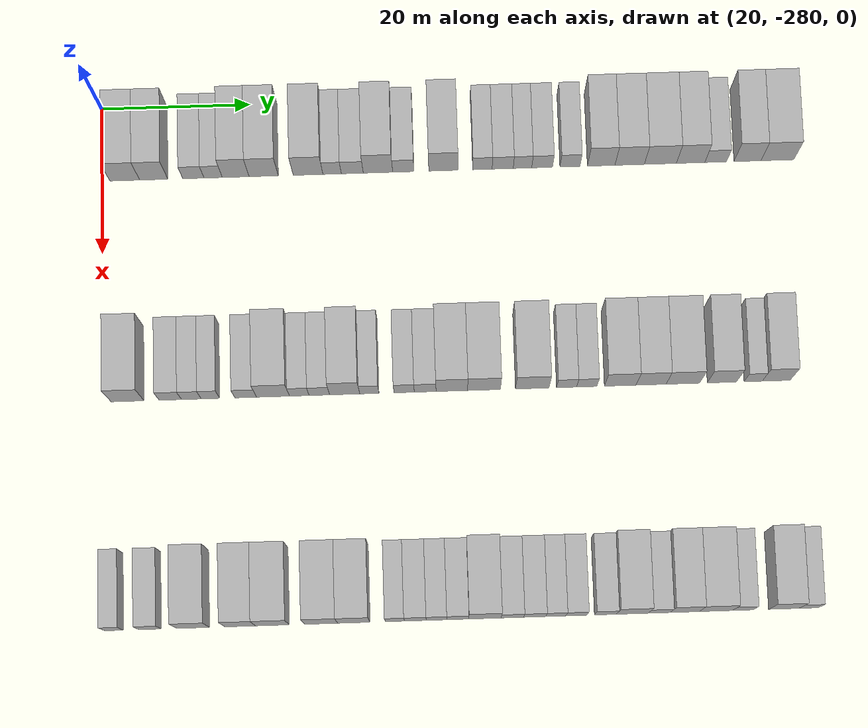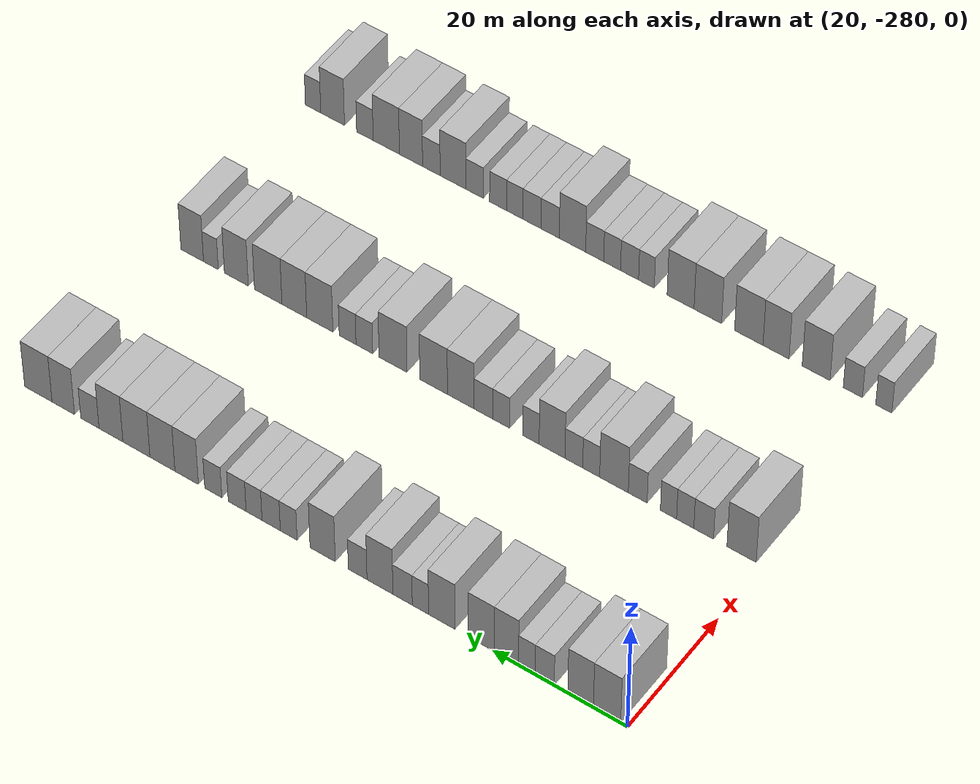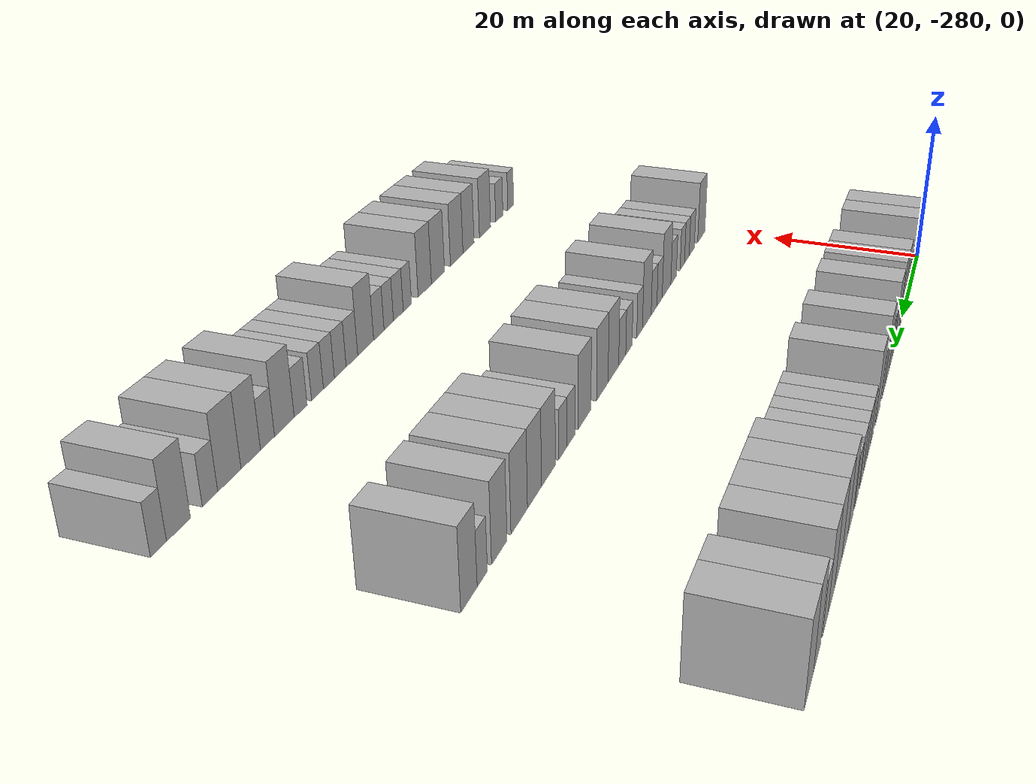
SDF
<sdf version="1.6">
 <world name="default">
  <model name="building_1">
   <static>1</static>
   <pose>25.0000 -276.9936 0 0.000000 0.000000 0.000000</pose>
   <link name="link">
    <pose>0 0 4.50 0 0 0</pose>
    <collision name="collision"><geometry><box><size>10.0000 4.0128 9.0000</size></box></geometry></collision>
    <visual name="visual">
     <cast_shadows>0</cast_shadows>
     <geometry><box><size>10.0000 4.0128 9.0000</size></box></geometry>
     <material>
      <script>
       <uri>model://HANNAS_wall/materials/scripts</uri>
       <uri>model://HANNAS_wall/materials/textures</uri>
       <name>vrc/HANNAS_wall</name>
      </script>
     </material>
    </visual>
   </link>
  </model>
  <model name="building_2">
   <static>1</static>
   <pose>25.0000 -273.1018 0 0.000000 0.000000 0.000000</pose>
   <link name="link">
    <pose>0 0 4.50 0 0 0</pose>
    <collision name="collision"><geometry><box><size>10.0000 3.7709 9.0000</size></box></geometry></collision>
    <visual name="visual">
     <cast_shadows>0</cast_shadows>
     <geometry><box><size>10.0000 3.7709 9.0000</size></box></geometry>
     <material>
      <script>
       <uri>model://HANNAS_wall/materials/scripts</uri>
       <uri>model://HANNAS_wall/materials/textures</uri>
       <name>vrc/HANNAS_wall</name>
      </script>
     </material>
    </visual>
   </link>
  </model>
  <model name="building_3">
   <static>1</static>
   <pose>25.0000 -267.7888 0 0.000000 0.000000 0.000000</pose>
   <link name="link">
    <pose>0 0 3.00 0 0 0</pose>
    <collision name="collision"><geometry><box><size>10.0000 2.8552 6.0000</size></box></geometry></collision>
    <visual name="visual">
     <cast_shadows>0</cast_shadows>
     <geometry><box><size>10.0000 2.8552 6.0000</size></box></geometry>
     <material>
      <script>
       <uri>model://HANNAS_wall/materials/scripts</uri>
       <uri>model://HANNAS_wall/materials/textures</uri>
       <name>vrc/HANNAS_wall</name>
      </script>
     </material>
    </visual>
   </link>
  </model>
  <model name="building_4">
   <static>1</static>
   <pose>25.0000 -265.1364 0 0.000000 0.000000 0.000000</pose>
   <link name="link">
    <pose>0 0 3.00 0 0 0</pose>
    <collision name="collision"><geometry><box><size>10.0000 2.4496 6.0000</size></box></geometry></collision>
    <visual name="visual">
     <cast_shadows>0</cast_shadows>
     <geometry><box><size>10.0000 2.4496 6.0000</size></box></geometry>
     <material>
      <script>
       <uri>model://HANNAS_wall/materials/scripts</uri>
       <uri>model://HANNAS_wall/materials/textures</uri>
       <name>vrc/HANNAS_wall</name>
      </script>
     </material>
    </visual>
   </link>
  </model>
  <model name="building_5">
   <static>1</static>
   <pose>25.0000 -262.1092 0 0.000000 0.000000 0.000000</pose>
   <link name="link">
    <pose>0 0 4.50 0 0 0</pose>
    <collision name="collision"><geometry><box><size>10.0000 3.6049 9.0000</size></box></geometry></collision>
    <visual name="visual">
     <cast_shadows>0</cast_shadows>
     <geometry><box><size>10.0000 3.6049 9.0000</size></box></geometry>
     <material>
      <script>
       <uri>model://HANNAS_wall/materials/scripts</uri>
       <uri>model://HANNAS_wall/materials/textures</uri>
       <name>vrc/HANNAS_wall</name>
      </script>
     </material>
    </visual>
   </link>
  </model>
  <model name="building_6">
   <static>1</static>
   <pose>25.0000 -258.3489 0 0.000000 0.000000 0.000000</pose>
   <link name="link">
    <pose>0 0 4.50 0 0 0</pose>
    <collision name="collision"><geometry><box><size>10.0000 3.9157 9.0000</size></box></geometry></collision>
    <visual name="visual">
     <cast_shadows>0</cast_shadows>
     <geometry><box><size>10.0000 3.9157 9.0000</size></box></geometry>
     <material>
      <script>
       <uri>model://HANNAS_wall/materials/scripts</uri>
       <uri>model://HANNAS_wall/materials/textures</uri>
       <name>vrc/HANNAS_wall</name>
      </script>
     </material>
    </visual>
   </link>
  </model>
  <model name="building_7">
   <static>1</static>
   <pose>25.0000 -252.3953 0 0.000000 0.000000 0.000000</pose>
   <link name="link">
    <pose>0 0 4.50 0 0 0</pose>
    <collision name="collision"><geometry><box><size>10.0000 3.9916 9.0000</size></box></geometry></collision>
    <visual name="visual">
     <cast_shadows>0</cast_shadows>
     <geometry><box><size>10.0000 3.9916 9.0000</size></box></geometry>
     <material>
      <script>
       <uri>model://HANNAS_wall/materials/scripts</uri>
       <uri>model://HANNAS_wall/materials/textures</uri>
       <name>vrc/HANNAS_wall</name>
      </script>
     </material>
    </visual>
   </link>
  </model>
  <model name="building_8">
   <static>1</static>
   <pose>25.0000 -249.1652 0 0.000000 0.000000 0.000000</pose>
   <link name="link">
    <pose>0 0 3.00 0 0 0</pose>
    <collision name="collision"><geometry><box><size>10.0000 2.4686 6.0000</size></box></geometry></collision>
    <visual name="visual">
     <cast_shadows>0</cast_shadows>
     <geometry><box><size>10.0000 2.4686 6.0000</size></box></geometry>
     <material>
      <script>
       <uri>model://HANNAS_wall/materials/scripts</uri>
       <uri>model://HANNAS_wall/materials/textures</uri>
       <name>vrc/HANNAS_wall</name>
      </script>
     </material>
    </visual>
   </link>
  </model>
  <model name="building_9">
   <static>1</static>
   <pose>25.0000 -246.4581 0 0.000000 0.000000 0.000000</pose>
   <link name="link">
    <pose>0 0 3.00 0 0 0</pose>
    <collision name="collision"><geometry><box><size>10.0000 2.9456 6.0000</size></box></geometry></collision>
    <visual name="visual">
     <cast_shadows>0</cast_shadows>
     <geometry><box><size>10.0000 2.9456 6.0000</size></box></geometry>
     <material>
      <script>
       <uri>model://HANNAS_wall/materials/scripts</uri>
       <uri>model://HANNAS_wall/materials/textures</uri>
       <name>vrc/HANNAS_wall</name>
      </script>
     </material>
    </visual>
   </link>
  </model>
  <model name="building_10">
   <static>1</static>
   <pose>25.0000 -243.0096 0 0.000000 0.000000 0.000000</pose>
   <link name="link">
    <pose>0 0 4.50 0 0 0</pose>
    <collision name="collision"><geometry><box><size>10.0000 3.9515 9.0000</size></box></geometry></collision>
    <visual name="visual">
     <cast_shadows>0</cast_shadows>
     <geometry><box><size>10.0000 3.9515 9.0000</size></box></geometry>
     <material>
      <script>
       <uri>model://HANNAS_wall/materials/scripts</uri>
       <uri>model://HANNAS_wall/materials/textures</uri>
       <name>vrc/HANNAS_wall</name>
      </script>
     </material>
    </visual>
   </link>
  </model>
  <model name="building_11">
   <static>1</static>
   <pose>25.0000 -239.6024 0 0.000000 0.000000 0.000000</pose>
   <link name="link">
    <pose>0 0 3.00 0 0 0</pose>
    <collision name="collision"><geometry><box><size>10.0000 2.8628 6.0000</size></box></geometry></collision>
    <visual name="visual">
     <cast_shadows>0</cast_shadows>
     <geometry><box><size>10.0000 2.8628 6.0000</size></box></geometry>
     <material>
      <script>
       <uri>model://HANNAS_wall/materials/scripts</uri>
       <uri>model://HANNAS_wall/materials/textures</uri>
       <name>vrc/HANNAS_wall</name>
      </script>
     </material>
    </visual>
   </link>
  </model>
  <model name="building_12">
   <static>1</static>
   <pose>25.0000 -234.2247 0 0.000000 0.000000 0.000000</pose>
   <link name="link">
    <pose>0 0 4.50 0 0 0</pose>
    <collision name="collision"><geometry><box><size>10.0000 3.8927 9.0000</size></box></geometry></collision>
    <visual name="visual">
     <cast_shadows>0</cast_shadows>
     <geometry><box><size>10.0000 3.8927 9.0000</size></box></geometry>
     <material>
      <script>
       <uri>model://HANNAS_wall/materials/scripts</uri>
       <uri>model://HANNAS_wall/materials/textures</uri>
       <name>vrc/HANNAS_wall</name>
      </script>
     </material>
    </visual>
   </link>
  </model>
  <model name="building_13">
   <static>1</static>
   <pose>25.0000 -228.9771 0 0.000000 0.000000 0.000000</pose>
   <link name="link">
    <pose>0 0 3.00 0 0 0</pose>
    <collision name="collision"><geometry><box><size>10.0000 2.6024 6.0000</size></box></geometry></collision>
    <visual name="visual">
     <cast_shadows>0</cast_shadows>
     <geometry><box><size>10.0000 2.6024 6.0000</size></box></geometry>
     <material>
      <script>
       <uri>model://HANNAS_wall/materials/scripts</uri>
       <uri>model://HANNAS_wall/materials/textures</uri>
       <name>vrc/HANNAS_wall</name>
      </script>
     </material>
    </visual>
   </link>
  </model>
  <model name="building_14">
   <static>1</static>
   <pose>25.0000 -226.2507 0 0.000000 0.000000 0.000000</pose>
   <link name="link">
    <pose>0 0 3.00 0 0 0</pose>
    <collision name="collision"><geometry><box><size>10.0000 2.8504 6.0000</size></box></geometry></collision>
    <visual name="visual">
     <cast_shadows>0</cast_shadows>
     <geometry><box><size>10.0000 2.8504 6.0000</size></box></geometry>
     <material>
      <script>
       <uri>model://HANNAS_wall/materials/scripts</uri>
       <uri>model://HANNAS_wall/materials/textures</uri>
       <name>vrc/HANNAS_wall</name>
      </script>
     </material>
    </visual>
   </link>
  </model>
  <model name="building_15">
   <static>1</static>
   <pose>25.0000 -223.5835 0 0.000000 0.000000 0.000000</pose>
   <link name="link">
    <pose>0 0 3.00 0 0 0</pose>
    <collision name="collision"><geometry><box><size>10.0000 2.4840 6.0000</size></box></geometry></collision>
    <visual name="visual">
     <cast_shadows>0</cast_shadows>
     <geometry><box><size>10.0000 2.4840 6.0000</size></box></geometry>
     <material>
      <script>
       <uri>model://HANNAS_wall/materials/scripts</uri>
       <uri>model://HANNAS_wall/materials/textures</uri>
       <name>vrc/HANNAS_wall</name>
      </script>
     </material>
    </visual>
   </link>
  </model>
  <model name="building_16">
   <static>1</static>
   <pose>25.0000 -220.9449 0 0.000000 0.000000 0.000000</pose>
   <link name="link">
    <pose>0 0 3.00 0 0 0</pose>
    <collision name="collision"><geometry><box><size>10.0000 2.7931 6.0000</size></box></geometry></collision>
    <visual name="visual">
     <cast_shadows>0</cast_shadows>
     <geometry><box><size>10.0000 2.7931 6.0000</size></box></geometry>
     <material>
      <script>
       <uri>model://HANNAS_wall/materials/scripts</uri>
       <uri>model://HANNAS_wall/materials/textures</uri>
       <name>vrc/HANNAS_wall</name>
      </script>
     </material>
    </visual>
   </link>
  </model>
  <model name="building_17">
   <static>1</static>
   <pose>25.0000 -217.2045 0 0.000000 0.000000 0.000000</pose>
   <link name="link">
    <pose>0 0 3.00 0 0 0</pose>
    <collision name="collision"><geometry><box><size>10.0000 2.6878 6.0000</size></box></geometry></collision>
    <visual name="visual">
     <cast_shadows>0</cast_shadows>
     <geometry><box><size>10.0000 2.6878 6.0000</size></box></geometry>
     <material>
      <script>
       <uri>model://HANNAS_wall/materials/scripts</uri>
       <uri>model://HANNAS_wall/materials/textures</uri>
       <name>vrc/HANNAS_wall</name>
      </script>
     </material>
    </visual>
   </link>
  </model>
  <model name="building_18">
   <static>1</static>
   <pose>25.0000 -213.0085 0 0.000000 0.000000 0.000000</pose>
   <link name="link">
    <pose>0 0 4.50 0 0 0</pose>
    <collision name="collision"><geometry><box><size>10.0000 3.7042 9.0000</size></box></geometry></collision>
    <visual name="visual">
     <cast_shadows>0</cast_shadows>
     <geometry><box><size>10.0000 3.7042 9.0000</size></box></geometry>
     <material>
      <script>
       <uri>model://HANNAS_wall/materials/scripts</uri>
       <uri>model://HANNAS_wall/materials/textures</uri>
       <name>vrc/HANNAS_wall</name>
      </script>
     </material>
    </visual>
   </link>
  </model>
  <model name="building_19">
   <static>1</static>
   <pose>25.0000 -209.1764 0 0.000000 0.000000 0.000000</pose>
   <link name="link">
    <pose>0 0 4.50 0 0 0</pose>
    <collision name="collision"><geometry><box><size>10.0000 3.9599 9.0000</size></box></geometry></collision>
    <visual name="visual">
     <cast_shadows>0</cast_shadows>
     <geometry><box><size>10.0000 3.9599 9.0000</size></box></geometry>
     <material>
      <script>
       <uri>model://HANNAS_wall/materials/scripts</uri>
       <uri>model://HANNAS_wall/materials/textures</uri>
       <name>vrc/HANNAS_wall</name>
      </script>
     </material>
    </visual>
   </link>
  </model>
  <model name="building_20">
   <static>1</static>
   <pose>25.0000 -205.0404 0 0.000000 0.000000 0.000000</pose>
   <link name="link">
    <pose>0 0 4.50 0 0 0</pose>
    <collision name="collision"><geometry><box><size>10.0000 4.3121 9.0000</size></box></geometry></collision>
    <visual name="visual">
     <cast_shadows>0</cast_shadows>
     <geometry><box><size>10.0000 4.3121 9.0000</size></box></geometry>
     <material>
      <script>
       <uri>model://HANNAS_wall/materials/scripts</uri>
       <uri>model://HANNAS_wall/materials/textures</uri>
       <name>vrc/HANNAS_wall</name>
      </script>
     </material>
    </visual>
   </link>
  </model>
  <model name="building_21">
   <static>1</static>
   <pose>25.0000 -200.9704 0 0.000000 0.000000 0.000000</pose>
   <link name="link">
    <pose>0 0 4.50 0 0 0</pose>
    <collision name="collision"><geometry><box><size>10.0000 3.8279 9.0000</size></box></geometry></collision>
    <visual name="visual">
     <cast_shadows>0</cast_shadows>
     <geometry><box><size>10.0000 3.8279 9.0000</size></box></geometry>
     <material>
      <script>
       <uri>model://HANNAS_wall/materials/scripts</uri>
       <uri>model://HANNAS_wall/materials/textures</uri>
       <name>vrc/HANNAS_wall</name>
      </script>
     </material>
    </visual>
   </link>
  </model>
  <model name="building_22">
   <static>1</static>
   <pose>25.0000 -197.5957 0 0.000000 0.000000 0.000000</pose>
   <link name="link">
    <pose>0 0 3.00 0 0 0</pose>
    <collision name="collision"><geometry><box><size>10.0000 2.9216 6.0000</size></box></geometry></collision>
    <visual name="visual">
     <cast_shadows>0</cast_shadows>
     <geometry><box><size>10.0000 2.9216 6.0000</size></box></geometry>
     <material>
      <script>
       <uri>model://HANNAS_wall/materials/scripts</uri>
       <uri>model://HANNAS_wall/materials/textures</uri>
       <name>vrc/HANNAS_wall</name>
      </script>
     </material>
    </visual>
   </link>
  </model>
  <model name="building_23">
   <static>1</static>
   <pose>25.0000 -193.3182 0 0.000000 0.000000 0.000000</pose>
   <link name="link">
    <pose>0 0 4.50 0 0 0</pose>
    <collision name="collision"><geometry><box><size>10.0000 3.6334 9.0000</size></box></geometry></collision>
    <visual name="visual">
     <cast_shadows>0</cast_shadows>
     <geometry><box><size>10.0000 3.6334 9.0000</size></box></geometry>
     <material>
      <script>
       <uri>model://HANNAS_wall/materials/scripts</uri>
       <uri>model://HANNAS_wall/materials/textures</uri>
       <name>vrc/HANNAS_wall</name>
      </script>
     </material>
    </visual>
   </link>
  </model>
  <model name="building_24">
   <static>1</static>
   <pose>25.0000 -189.2866 0 0.000000 0.000000 0.000000</pose>
   <link name="link">
    <pose>0 0 4.50 0 0 0</pose>
    <collision name="collision"><geometry><box><size>10.0000 4.4299 9.0000</size></box></geometry></collision>
    <visual name="visual">
     <cast_shadows>0</cast_shadows>
     <geometry><box><size>10.0000 4.4299 9.0000</size></box></geometry>
     <material>
      <script>
       <uri>model://HANNAS_wall/materials/scripts</uri>
       <uri>model://HANNAS_wall/materials/textures</uri>
       <name>vrc/HANNAS_wall</name>
      </script>
     </material>
    </visual>
   </link>
  </model>
  <model name="building_143">
   <static>1</static>
   <pose>55.0000 -276.8254 0 0.000000 0.000000 0.000000</pose>
   <link name="link">
    <pose>0 0 4.50 0 0 0</pose>
    <collision name="collision"><geometry><box><size>10.0000 4.3493 9.0000</size></box></geometry></collision>
    <visual name="visual">
     <cast_shadows>0</cast_shadows>
     <geometry><box><size>10.0000 4.3493 9.0000</size></box></geometry>
     <material>
      <script>
       <uri>model://HANNAS_wall/materials/scripts</uri>
       <uri>model://HANNAS_wall/materials/textures</uri>
       <name>vrc/HANNAS_wall</name>
      </script>
     </material>
    </visual>
   </link>
  </model>
  <model name="building_144">
   <static>1</static>
   <pose>55.0000 -271.1749 0 0.000000 0.000000 0.000000</pose>
   <link name="link">
    <pose>0 0 3.00 0 0 0</pose>
    <collision name="collision"><geometry><box><size>10.0000 2.9516 6.0000</size></box></geometry></collision>
    <visual name="visual">
     <cast_shadows>0</cast_shadows>
     <geometry><box><size>10.0000 2.9516 6.0000</size></box></geometry>
     <material>
      <script>
       <uri>model://HANNAS_wall/materials/scripts</uri>
       <uri>model://HANNAS_wall/materials/textures</uri>
       <name>vrc/HANNAS_wall</name>
      </script>
     </material>
    </visual>
   </link>
  </model>
  <model name="building_145">
   <static>1</static>
   <pose>55.0000 -268.4026 0 0.000000 0.000000 0.000000</pose>
   <link name="link">
    <pose>0 0 3.00 0 0 0</pose>
    <collision name="collision"><geometry><box><size>10.0000 2.5930 6.0000</size></box></geometry></collision>
    <visual name="visual">
     <cast_shadows>0</cast_shadows>
     <geometry><box><size>10.0000 2.5930 6.0000</size></box></geometry>
     <material>
      <script>
       <uri>model://HANNAS_wall/materials/scripts</uri>
       <uri>model://HANNAS_wall/materials/textures</uri>
       <name>vrc/HANNAS_wall</name>
      </script>
     </material>
    </visual>
   </link>
  </model>
  <model name="building_146">
   <static>1</static>
   <pose>55.0000 -265.8883 0 0.000000 0.000000 0.000000</pose>
   <link name="link">
    <pose>0 0 3.00 0 0 0</pose>
    <collision name="collision"><geometry><box><size>10.0000 2.4357 6.0000</size></box></geometry></collision>
    <visual name="visual">
     <cast_shadows>0</cast_shadows>
     <geometry><box><size>10.0000 2.4357 6.0000</size></box></geometry>
     <material>
      <script>
       <uri>model://HANNAS_wall/materials/scripts</uri>
       <uri>model://HANNAS_wall/materials/textures</uri>
       <name>vrc/HANNAS_wall</name>
      </script>
     </material>
    </visual>
   </link>
  </model>
  <model name="building_147">
   <static>1</static>
   <pose>55.0000 -261.2442 0 0.000000 0.000000 0.000000</pose>
   <link name="link">
    <pose>0 0 3.00 0 0 0</pose>
    <collision name="collision"><geometry><box><size>10.0000 2.8525 6.0000</size></box></geometry></collision>
    <visual name="visual">
     <cast_shadows>0</cast_shadows>
     <geometry><box><size>10.0000 2.8525 6.0000</size></box></geometry>
     <material>
      <script>
       <uri>model://HANNAS_wall/materials/scripts</uri>
       <uri>model://HANNAS_wall/materials/textures</uri>
       <name>vrc/HANNAS_wall</name>
      </script>
     </material>
    </visual>
   </link>
  </model>
  <model name="building_148">
   <static>1</static>
   <pose>55.0000 -257.6427 0 0.000000 0.000000 0.000000</pose>
   <link name="link">
    <pose>0 0 4.50 0 0 0</pose>
    <collision name="collision"><geometry><box><size>10.0000 4.3506 9.0000</size></box></geometry></collision>
    <visual name="visual">
     <cast_shadows>0</cast_shadows>
     <geometry><box><size>10.0000 4.3506 9.0000</size></box></geometry>
     <material>
      <script>
       <uri>model://HANNAS_wall/materials/scripts</uri>
       <uri>model://HANNAS_wall/materials/textures</uri>
       <name>vrc/HANNAS_wall</name>
      </script>
     </material>
    </visual>
   </link>
  </model>
  <model name="building_149">
   <static>1</static>
   <pose>55.0000 -254.1736 0 0.000000 0.000000 0.000000</pose>
   <link name="link">
    <pose>0 0 3.00 0 0 0</pose>
    <collision name="collision"><geometry><box><size>10.0000 2.5877 6.0000</size></box></geometry></collision>
    <visual name="visual">
     <cast_shadows>0</cast_shadows>
     <geometry><box><size>10.0000 2.5877 6.0000</size></box></geometry>
     <material>
      <script>
       <uri>model://HANNAS_wall/materials/scripts</uri>
       <uri>model://HANNAS_wall/materials/textures</uri>
       <name>vrc/HANNAS_wall</name>
      </script>
     </material>
    </visual>
   </link>
  </model>
  <model name="building_150">
   <static>1</static>
   <pose>55.0000 -251.5219 0 0.000000 0.000000 0.000000</pose>
   <link name="link">
    <pose>0 0 3.00 0 0 0</pose>
    <collision name="collision"><geometry><box><size>10.0000 2.7157 6.0000</size></box></geometry></collision>
    <visual name="visual">
     <cast_shadows>0</cast_shadows>
     <geometry><box><size>10.0000 2.7157 6.0000</size></box></geometry>
     <material>
      <script>
       <uri>model://HANNAS_wall/materials/scripts</uri>
       <uri>model://HANNAS_wall/materials/textures</uri>
       <name>vrc/HANNAS_wall</name>
      </script>
     </material>
    </visual>
   </link>
  </model>
  <model name="building_151">
   <static>1</static>
   <pose>55.0000 -248.1792 0 0.000000 0.000000 0.000000</pose>
   <link name="link">
    <pose>0 0 4.50 0 0 0</pose>
    <collision name="collision"><geometry><box><size>10.0000 3.9698 9.0000</size></box></geometry></collision>
    <visual name="visual">
     <cast_shadows>0</cast_shadows>
     <geometry><box><size>10.0000 3.9698 9.0000</size></box></geometry>
     <material>
      <script>
       <uri>model://HANNAS_wall/materials/scripts</uri>
       <uri>model://HANNAS_wall/materials/textures</uri>
       <name>vrc/HANNAS_wall</name>
      </script>
     </material>
    </visual>
   </link>
  </model>
  <model name="building_152">
   <static>1</static>
   <pose>55.0000 -244.9287 0 0.000000 0.000000 0.000000</pose>
   <link name="link">
    <pose>0 0 3.00 0 0 0</pose>
    <collision name="collision"><geometry><box><size>10.0000 2.5312 6.0000</size></box></geometry></collision>
    <visual name="visual">
     <cast_shadows>0</cast_shadows>
     <geometry><box><size>10.0000 2.5312 6.0000</size></box></geometry>
     <material>
      <script>
       <uri>model://HANNAS_wall/materials/scripts</uri>
       <uri>model://HANNAS_wall/materials/textures</uri>
       <name>vrc/HANNAS_wall</name>
      </script>
     </material>
    </visual>
   </link>
  </model>
  <model name="building_153">
   <static>1</static>
   <pose>55.0000 -240.3301 0 0.000000 0.000000 0.000000</pose>
   <link name="link">
    <pose>0 0 3.00 0 0 0</pose>
    <collision name="collision"><geometry><box><size>10.0000 2.6659 6.0000</size></box></geometry></collision>
    <visual name="visual">
     <cast_shadows>0</cast_shadows>
     <geometry><box><size>10.0000 2.6659 6.0000</size></box></geometry>
     <material>
      <script>
       <uri>model://HANNAS_wall/materials/scripts</uri>
       <uri>model://HANNAS_wall/materials/textures</uri>
       <name>vrc/HANNAS_wall</name>
      </script>
     </material>
    </visual>
   </link>
  </model>
  <model name="building_154">
   <static>1</static>
   <pose>55.0000 -237.5603 0 0.000000 0.000000 0.000000</pose>
   <link name="link">
    <pose>0 0 3.00 0 0 0</pose>
    <collision name="collision"><geometry><box><size>10.0000 2.8738 6.0000</size></box></geometry></collision>
    <visual name="visual">
     <cast_shadows>0</cast_shadows>
     <geometry><box><size>10.0000 2.8738 6.0000</size></box></geometry>
     <material>
      <script>
       <uri>model://HANNAS_wall/materials/scripts</uri>
       <uri>model://HANNAS_wall/materials/textures</uri>
       <name>vrc/HANNAS_wall</name>
      </script>
     </material>
    </visual>
   </link>
  </model>
  <model name="building_155">
   <static>1</static>
   <pose>55.0000 -234.0461 0 0.000000 0.000000 0.000000</pose>
   <link name="link">
    <pose>0 0 4.50 0 0 0</pose>
    <collision name="collision"><geometry><box><size>10.0000 4.1546 9.0000</size></box></geometry></collision>
    <visual name="visual">
     <cast_shadows>0</cast_shadows>
     <geometry><box><size>10.0000 4.1546 9.0000</size></box></geometry>
     <material>
      <script>
       <uri>model://HANNAS_wall/materials/scripts</uri>
       <uri>model://HANNAS_wall/materials/textures</uri>
       <name>vrc/HANNAS_wall</name>
      </script>
     </material>
    </visual>
   </link>
  </model>
  <model name="building_156">
   <static>1</static>
   <pose>55.0000 -229.8014 0 0.000000 0.000000 0.000000</pose>
   <link name="link">
    <pose>0 0 4.50 0 0 0</pose>
    <collision name="collision"><geometry><box><size>10.0000 4.3347 9.0000</size></box></geometry></collision>
    <visual name="visual">
     <cast_shadows>0</cast_shadows>
     <geometry><box><size>10.0000 4.3347 9.0000</size></box></geometry>
     <material>
      <script>
       <uri>model://HANNAS_wall/materials/scripts</uri>
       <uri>model://HANNAS_wall/materials/textures</uri>
       <name>vrc/HANNAS_wall</name>
      </script>
     </material>
    </visual>
   </link>
  </model>
  <model name="building_157">
   <static>1</static>
   <pose>55.0000 -223.4245 0 0.000000 0.000000 0.000000</pose>
   <link name="link">
    <pose>0 0 4.50 0 0 0</pose>
    <collision name="collision"><geometry><box><size>10.0000 4.4191 9.0000</size></box></geometry></collision>
    <visual name="visual">
     <cast_shadows>0</cast_shadows>
     <geometry><box><size>10.0000 4.4191 9.0000</size></box></geometry>
     <material>
      <script>
       <uri>model://HANNAS_wall/materials/scripts</uri>
       <uri>model://HANNAS_wall/materials/textures</uri>
       <name>vrc/HANNAS_wall</name>
      </script>
     </material>
    </visual>
   </link>
  </model>
  <model name="building_158">
   <static>1</static>
   <pose>55.0000 -218.8882 0 0.000000 0.000000 0.000000</pose>
   <link name="link">
    <pose>0 0 3.00 0 0 0</pose>
    <collision name="collision"><geometry><box><size>10.0000 2.6534 6.0000</size></box></geometry></collision>
    <visual name="visual">
     <cast_shadows>0</cast_shadows>
     <geometry><box><size>10.0000 2.6534 6.0000</size></box></geometry>
     <material>
      <script>
       <uri>model://HANNAS_wall/materials/scripts</uri>
       <uri>model://HANNAS_wall/materials/textures</uri>
       <name>vrc/HANNAS_wall</name>
      </script>
     </material>
    </visual>
   </link>
  </model>
  <model name="building_159">
   <static>1</static>
   <pose>55.0000 -216.2236 0 0.000000 0.000000 0.000000</pose>
   <link name="link">
    <pose>0 0 3.00 0 0 0</pose>
    <collision name="collision"><geometry><box><size>10.0000 2.6759 6.0000</size></box></geometry></collision>
    <visual name="visual">
     <cast_shadows>0</cast_shadows>
     <geometry><box><size>10.0000 2.6759 6.0000</size></box></geometry>
     <material>
      <script>
       <uri>model://HANNAS_wall/materials/scripts</uri>
       <uri>model://HANNAS_wall/materials/textures</uri>
       <name>vrc/HANNAS_wall</name>
      </script>
     </material>
    </visual>
   </link>
  </model>
  <model name="building_160">
   <static>1</static>
   <pose>55.0000 -211.7945 0 0.000000 0.000000 0.000000</pose>
   <link name="link">
    <pose>0 0 4.50 0 0 0</pose>
    <collision name="collision"><geometry><box><size>10.0000 4.1822 9.0000</size></box></geometry></collision>
    <visual name="visual">
     <cast_shadows>0</cast_shadows>
     <geometry><box><size>10.0000 4.1822 9.0000</size></box></geometry>
     <material>
      <script>
       <uri>model://HANNAS_wall/materials/scripts</uri>
       <uri>model://HANNAS_wall/materials/textures</uri>
       <name>vrc/HANNAS_wall</name>
      </script>
     </material>
    </visual>
   </link>
  </model>
  <model name="building_161">
   <static>1</static>
   <pose>55.0000 -207.7109 0 0.000000 0.000000 0.000000</pose>
   <link name="link">
    <pose>0 0 4.50 0 0 0</pose>
    <collision name="collision"><geometry><box><size>10.0000 3.9851 9.0000</size></box></geometry></collision>
    <visual name="visual">
     <cast_shadows>0</cast_shadows>
     <geometry><box><size>10.0000 3.9851 9.0000</size></box></geometry>
     <material>
      <script>
       <uri>model://HANNAS_wall/materials/scripts</uri>
       <uri>model://HANNAS_wall/materials/textures</uri>
       <name>vrc/HANNAS_wall</name>
      </script>
     </material>
    </visual>
   </link>
  </model>
  <model name="building_162">
   <static>1</static>
   <pose>55.0000 -203.5003 0 0.000000 0.000000 0.000000</pose>
   <link name="link">
    <pose>0 0 4.50 0 0 0</pose>
    <collision name="collision"><geometry><box><size>10.0000 4.4361 9.0000</size></box></geometry></collision>
    <visual name="visual">
     <cast_shadows>0</cast_shadows>
     <geometry><box><size>10.0000 4.4361 9.0000</size></box></geometry>
     <material>
      <script>
       <uri>model://HANNAS_wall/materials/scripts</uri>
       <uri>model://HANNAS_wall/materials/textures</uri>
       <name>vrc/HANNAS_wall</name>
      </script>
     </material>
    </visual>
   </link>
  </model>
  <model name="building_163">
   <static>1</static>
   <pose>55.0000 -198.3446 0 0.000000 0.000000 0.000000</pose>
   <link name="link">
    <pose>0 0 4.50 0 0 0</pose>
    <collision name="collision"><geometry><box><size>10.0000 3.8752 9.0000</size></box></geometry></collision>
    <visual name="visual">
     <cast_shadows>0</cast_shadows>
     <geometry><box><size>10.0000 3.8752 9.0000</size></box></geometry>
     <material>
      <script>
       <uri>model://HANNAS_wall/materials/scripts</uri>
       <uri>model://HANNAS_wall/materials/textures</uri>
       <name>vrc/HANNAS_wall</name>
      </script>
     </material>
    </visual>
   </link>
  </model>
  <model name="building_164">
   <static>1</static>
   <pose>55.0000 -194.2064 0 0.000000 0.000000 0.000000</pose>
   <link name="link">
    <pose>0 0 3.00 0 0 0</pose>
    <collision name="collision"><geometry><box><size>10.0000 2.4013 6.0000</size></box></geometry></collision>
    <visual name="visual">
     <cast_shadows>0</cast_shadows>
     <geometry><box><size>10.0000 2.4013 6.0000</size></box></geometry>
     <material>
      <script>
       <uri>model://HANNAS_wall/materials/scripts</uri>
       <uri>model://HANNAS_wall/materials/textures</uri>
       <name>vrc/HANNAS_wall</name>
      </script>
     </material>
    </visual>
   </link>
  </model>
  <model name="building_165">
   <static>1</static>
   <pose>55.0000 -191.1580 0 0.000000 0.000000 0.000000</pose>
   <link name="link">
    <pose>0 0 4.50 0 0 0</pose>
    <collision name="collision"><geometry><box><size>10.0000 3.6954 9.0000</size></box></geometry></collision>
    <visual name="visual">
     <cast_shadows>0</cast_shadows>
     <geometry><box><size>10.0000 3.6954 9.0000</size></box></geometry>
     <material>
      <script>
       <uri>model://HANNAS_wall/materials/scripts</uri>
       <uri>model://HANNAS_wall/materials/textures</uri>
       <name>vrc/HANNAS_wall</name>
      </script>
     </material>
    </visual>
   </link>
  </model>
  <model name="building_276">
   <static>1</static>
   <pose>85.0000 -278.7855 0 0.000000 0.000000 0.000000</pose>
   <link name="link">
    <pose>0 0 3.00 0 0 0</pose>
    <collision name="collision"><geometry><box><size>10.0000 2.4290 6.0000</size></box></geometry></collision>
    <visual name="visual">
     <cast_shadows>0</cast_shadows>
     <geometry><box><size>10.0000 2.4290 6.0000</size></box></geometry>
     <material>
      <script>
       <uri>model://HANNAS_wall/materials/scripts</uri>
       <uri>model://HANNAS_wall/materials/textures</uri>
       <name>vrc/HANNAS_wall</name>
      </script>
     </material>
    </visual>
   </link>
  </model>
  <model name="building_277">
   <static>1</static>
   <pose>85.0000 -274.1196 0 0.000000 0.000000 0.000000</pose>
   <link name="link">
    <pose>0 0 3.00 0 0 0</pose>
    <collision name="collision"><geometry><box><size>10.0000 2.9030 6.0000</size></box></geometry></collision>
    <visual name="visual">
     <cast_shadows>0</cast_shadows>
     <geometry><box><size>10.0000 2.9030 6.0000</size></box></geometry>
     <material>
      <script>
       <uri>model://HANNAS_wall/materials/scripts</uri>
       <uri>model://HANNAS_wall/materials/textures</uri>
       <name>vrc/HANNAS_wall</name>
      </script>
     </material>
    </visual>
   </link>
  </model>
  <model name="building_278">
   <static>1</static>
   <pose>85.0000 -268.5408 0 0.000000 0.000000 0.000000</pose>
   <link name="link">
    <pose>0 0 4.50 0 0 0</pose>
    <collision name="collision"><geometry><box><size>10.0000 4.2545 9.0000</size></box></geometry></collision>
    <visual name="visual">
     <cast_shadows>0</cast_shadows>
     <geometry><box><size>10.0000 4.2545 9.0000</size></box></geometry>
     <material>
      <script>
       <uri>model://HANNAS_wall/materials/scripts</uri>
       <uri>model://HANNAS_wall/materials/textures</uri>
       <name>vrc/HANNAS_wall</name>
      </script>
     </material>
    </visual>
   </link>
  </model>
  <model name="building_279">
   <static>1</static>
   <pose>85.0000 -262.4226 0 0.000000 0.000000 0.000000</pose>
   <link name="link">
    <pose>0 0 4.50 0 0 0</pose>
    <collision name="collision"><geometry><box><size>10.0000 3.9820 9.0000</size></box></geometry></collision>
    <visual name="visual">
     <cast_shadows>0</cast_shadows>
     <geometry><box><size>10.0000 3.9820 9.0000</size></box></geometry>
     <material>
      <script>
       <uri>model://HANNAS_wall/materials/scripts</uri>
       <uri>model://HANNAS_wall/materials/textures</uri>
       <name>vrc/HANNAS_wall</name>
      </script>
     </material>
    </visual>
   </link>
  </model>
  <model name="building_280">
   <static>1</static>
   <pose>85.0000 -258.2470 0 0.000000 0.000000 0.000000</pose>
   <link name="link">
    <pose>0 0 4.50 0 0 0</pose>
    <collision name="collision"><geometry><box><size>10.0000 4.3691 9.0000</size></box></geometry></collision>
    <visual name="visual">
     <cast_shadows>0</cast_shadows>
     <geometry><box><size>10.0000 4.3691 9.0000</size></box></geometry>
     <material>
      <script>
       <uri>model://HANNAS_wall/materials/scripts</uri>
       <uri>model://HANNAS_wall/materials/textures</uri>
       <name>vrc/HANNAS_wall</name>
      </script>
     </material>
    </visual>
   </link>
  </model>
  <model name="building_281">
   <static>1</static>
   <pose>85.0000 -251.9244 0 0.000000 0.000000 0.000000</pose>
   <link name="link">
    <pose>0 0 4.50 0 0 0</pose>
    <collision name="collision"><geometry><box><size>10.0000 4.2761 9.0000</size></box></geometry></collision>
    <visual name="visual">
     <cast_shadows>0</cast_shadows>
     <geometry><box><size>10.0000 4.2761 9.0000</size></box></geometry>
     <material>
      <script>
       <uri>model://HANNAS_wall/materials/scripts</uri>
       <uri>model://HANNAS_wall/materials/textures</uri>
       <name>vrc/HANNAS_wall</name>
      </script>
     </material>
    </visual>
   </link>
  </model>
  <model name="building_282">
   <static>1</static>
   <pose>85.0000 -247.6930 0 0.000000 0.000000 0.000000</pose>
   <link name="link">
    <pose>0 0 4.50 0 0 0</pose>
    <collision name="collision"><geometry><box><size>10.0000 4.1867 9.0000</size></box></geometry></collision>
    <visual name="visual">
     <cast_shadows>0</cast_shadows>
     <geometry><box><size>10.0000 4.1867 9.0000</size></box></geometry>
     <material>
      <script>
       <uri>model://HANNAS_wall/materials/scripts</uri>
       <uri>model://HANNAS_wall/materials/textures</uri>
       <name>vrc/HANNAS_wall</name>
      </script>
     </material>
    </visual>
   </link>
  </model>
  <model name="building_283">
   <static>1</static>
   <pose>85.0000 -242.3684 0 0.000000 0.000000 0.000000</pose>
   <link name="link">
    <pose>0 0 3.00 0 0 0</pose>
    <collision name="collision"><geometry><box><size>10.0000 2.4626 6.0000</size></box></geometry></collision>
    <visual name="visual">
     <cast_shadows>0</cast_shadows>
     <geometry><box><size>10.0000 2.4626 6.0000</size></box></geometry>
     <material>
      <script>
       <uri>model://HANNAS_wall/materials/scripts</uri>
       <uri>model://HANNAS_wall/materials/textures</uri>
       <name>vrc/HANNAS_wall</name>
      </script>
     </material>
    </visual>
   </link>
  </model>
  <model name="building_284">
   <static>1</static>
   <pose>85.0000 -239.7229 0 0.000000 0.000000 0.000000</pose>
   <link name="link">
    <pose>0 0 3.00 0 0 0</pose>
    <collision name="collision"><geometry><box><size>10.0000 2.8284 6.0000</size></box></geometry></collision>
    <visual name="visual">
     <cast_shadows>0</cast_shadows>
     <geometry><box><size>10.0000 2.8284 6.0000</size></box></geometry>
     <material>
      <script>
       <uri>model://HANNAS_wall/materials/scripts</uri>
       <uri>model://HANNAS_wall/materials/textures</uri>
       <name>vrc/HANNAS_wall</name>
      </script>
     </material>
    </visual>
   </link>
  </model>
  <model name="building_285">
   <static>1</static>
   <pose>85.0000 -236.9815 0 0.000000 0.000000 0.000000</pose>
   <link name="link">
    <pose>0 0 3.00 0 0 0</pose>
    <collision name="collision"><geometry><box><size>10.0000 2.6544 6.0000</size></box></geometry></collision>
    <visual name="visual">
     <cast_shadows>0</cast_shadows>
     <geometry><box><size>10.0000 2.6544 6.0000</size></box></geometry>
     <material>
      <script>
       <uri>model://HANNAS_wall/materials/scripts</uri>
       <uri>model://HANNAS_wall/materials/textures</uri>
       <name>vrc/HANNAS_wall</name>
      </script>
     </material>
    </visual>
   </link>
  </model>
  <model name="building_286">
   <static>1</static>
   <pose>85.0000 -234.2341 0 0.000000 0.000000 0.000000</pose>
   <link name="link">
    <pose>0 0 3.00 0 0 0</pose>
    <collision name="collision"><geometry><box><size>10.0000 2.8403 6.0000</size></box></geometry></collision>
    <visual name="visual">
     <cast_shadows>0</cast_shadows>
     <geometry><box><size>10.0000 2.8403 6.0000</size></box></geometry>
     <material>
      <script>
       <uri>model://HANNAS_wall/materials/scripts</uri>
       <uri>model://HANNAS_wall/materials/textures</uri>
       <name>vrc/HANNAS_wall</name>
      </script>
     </material>
    </visual>
   </link>
  </model>
  <model name="building_287">
   <static>1</static>
   <pose>85.0000 -230.7194 0 0.000000 0.000000 0.000000</pose>
   <link name="link">
    <pose>0 0 4.50 0 0 0</pose>
    <collision name="collision"><geometry><box><size>10.0000 4.1893 9.0000</size></box></geometry></collision>
    <visual name="visual">
     <cast_shadows>0</cast_shadows>
     <geometry><box><size>10.0000 4.1893 9.0000</size></box></geometry>
     <material>
      <script>
       <uri>model://HANNAS_wall/materials/scripts</uri>
       <uri>model://HANNAS_wall/materials/textures</uri>
       <name>vrc/HANNAS_wall</name>
      </script>
     </material>
    </visual>
   </link>
  </model>
  <model name="building_288">
   <static>1</static>
   <pose>85.0000 -227.1629 0 0.000000 0.000000 0.000000</pose>
   <link name="link">
    <pose>0 0 3.00 0 0 0</pose>
    <collision name="collision"><geometry><box><size>10.0000 2.9236 6.0000</size></box></geometry></collision>
    <visual name="visual">
     <cast_shadows>0</cast_shadows>
     <geometry><box><size>10.0000 2.9236 6.0000</size></box></geometry>
     <material>
      <script>
       <uri>model://HANNAS_wall/materials/scripts</uri>
       <uri>model://HANNAS_wall/materials/textures</uri>
       <name>vrc/HANNAS_wall</name>
      </script>
     </material>
    </visual>
   </link>
  </model>
  <model name="building_289">
   <static>1</static>
   <pose>85.0000 -224.2641 0 0.000000 0.000000 0.000000</pose>
   <link name="link">
    <pose>0 0 3.00 0 0 0</pose>
    <collision name="collision"><geometry><box><size>10.0000 2.8740 6.0000</size></box></geometry></collision>
    <visual name="visual">
     <cast_shadows>0</cast_shadows>
     <geometry><box><size>10.0000 2.8740 6.0000</size></box></geometry>
     <material>
      <script>
       <uri>model://HANNAS_wall/materials/scripts</uri>
       <uri>model://HANNAS_wall/materials/textures</uri>
       <name>vrc/HANNAS_wall</name>
      </script>
     </material>
    </visual>
   </link>
  </model>
  <model name="building_290">
   <static>1</static>
   <pose>85.0000 -221.5246 0 0.000000 0.000000 0.000000</pose>
   <link name="link">
    <pose>0 0 3.00 0 0 0</pose>
    <collision name="collision"><geometry><box><size>10.0000 2.6050 6.0000</size></box></geometry></collision>
    <visual name="visual">
     <cast_shadows>0</cast_shadows>
     <geometry><box><size>10.0000 2.6050 6.0000</size></box></geometry>
     <material>
      <script>
       <uri>model://HANNAS_wall/materials/scripts</uri>
       <uri>model://HANNAS_wall/materials/textures</uri>
       <name>vrc/HANNAS_wall</name>
      </script>
     </material>
    </visual>
   </link>
  </model>
  <model name="building_291">
   <static>1</static>
   <pose>85.0000 -218.8583 0 0.000000 0.000000 0.000000</pose>
   <link name="link">
    <pose>0 0 3.00 0 0 0</pose>
    <collision name="collision"><geometry><box><size>10.0000 2.7277 6.0000</size></box></geometry></collision>
    <visual name="visual">
     <cast_shadows>0</cast_shadows>
     <geometry><box><size>10.0000 2.7277 6.0000</size></box></geometry>
     <material>
      <script>
       <uri>model://HANNAS_wall/materials/scripts</uri>
       <uri>model://HANNAS_wall/materials/textures</uri>
       <name>vrc/HANNAS_wall</name>
      </script>
     </material>
    </visual>
   </link>
  </model>
  <model name="building_292">
   <static>1</static>
   <pose>85.0000 -215.0684 0 0.000000 0.000000 0.000000</pose>
   <link name="link">
    <pose>0 0 3.00 0 0 0</pose>
    <collision name="collision"><geometry><box><size>10.0000 2.8520 6.0000</size></box></geometry></collision>
    <visual name="visual">
     <cast_shadows>0</cast_shadows>
     <geometry><box><size>10.0000 2.8520 6.0000</size></box></geometry>
     <material>
      <script>
       <uri>model://HANNAS_wall/materials/scripts</uri>
       <uri>model://HANNAS_wall/materials/textures</uri>
       <name>vrc/HANNAS_wall</name>
      </script>
     </material>
    </visual>
   </link>
  </model>
  <model name="building_293">
   <static>1</static>
   <pose>85.0000 -211.5736 0 0.000000 0.000000 0.000000</pose>
   <link name="link">
    <pose>0 0 4.50 0 0 0</pose>
    <collision name="collision"><geometry><box><size>10.0000 4.1376 9.0000</size></box></geometry></collision>
    <visual name="visual">
     <cast_shadows>0</cast_shadows>
     <geometry><box><size>10.0000 4.1376 9.0000</size></box></geometry>
     <material>
      <script>
       <uri>model://HANNAS_wall/materials/scripts</uri>
       <uri>model://HANNAS_wall/materials/textures</uri>
       <name>vrc/HANNAS_wall</name>
      </script>
     </material>
    </visual>
   </link>
  </model>
  <model name="building_294">
   <static>1</static>
   <pose>85.0000 -208.0802 0 0.000000 0.000000 0.000000</pose>
   <link name="link">
    <pose>0 0 3.00 0 0 0</pose>
    <collision name="collision"><geometry><box><size>10.0000 2.8493 6.0000</size></box></geometry></collision>
    <visual name="visual">
     <cast_shadows>0</cast_shadows>
     <geometry><box><size>10.0000 2.8493 6.0000</size></box></geometry>
     <material>
      <script>
       <uri>model://HANNAS_wall/materials/scripts</uri>
       <uri>model://HANNAS_wall/materials/textures</uri>
       <name>vrc/HANNAS_wall</name>
      </script>
     </material>
    </visual>
   </link>
  </model>
  <model name="building_295">
   <static>1</static>
   <pose>85.0000 -204.7693 0 0.000000 0.000000 0.000000</pose>
   <link name="link">
    <pose>0 0 4.50 0 0 0</pose>
    <collision name="collision"><geometry><box><size>10.0000 3.7725 9.0000</size></box></geometry></collision>
    <visual name="visual">
     <cast_shadows>0</cast_shadows>
     <geometry><box><size>10.0000 3.7725 9.0000</size></box></geometry>
     <material>
      <script>
       <uri>model://HANNAS_wall/materials/scripts</uri>
       <uri>model://HANNAS_wall/materials/textures</uri>
       <name>vrc/HANNAS_wall</name>
      </script>
     </material>
    </visual>
   </link>
  </model>
  <model name="building_296">
   <static>1</static>
   <pose>85.0000 -200.7357 0 0.000000 0.000000 0.000000</pose>
   <link name="link">
    <pose>0 0 4.50 0 0 0</pose>
    <collision name="collision"><geometry><box><size>10.0000 4.2946 9.0000</size></box></geometry></collision>
    <visual name="visual">
     <cast_shadows>0</cast_shadows>
     <geometry><box><size>10.0000 4.2946 9.0000</size></box></geometry>
     <material>
      <script>
       <uri>model://HANNAS_wall/materials/scripts</uri>
       <uri>model://HANNAS_wall/materials/textures</uri>
       <name>vrc/HANNAS_wall</name>
      </script>
     </material>
    </visual>
   </link>
  </model>
  <model name="building_297">
   <static>1</static>
   <pose>85.0000 -197.2313 0 0.000000 0.000000 0.000000</pose>
   <link name="link">
    <pose>0 0 3.00 0 0 0</pose>
    <collision name="collision"><geometry><box><size>10.0000 2.7141 6.0000</size></box></geometry></collision>
    <visual name="visual">
     <cast_shadows>0</cast_shadows>
     <geometry><box><size>10.0000 2.7141 6.0000</size></box></geometry>
     <material>
      <script>
       <uri>model://HANNAS_wall/materials/scripts</uri>
       <uri>model://HANNAS_wall/materials/textures</uri>
       <name>vrc/HANNAS_wall</name>
      </script>
     </material>
    </visual>
   </link>
  </model>
  <model name="building_298">
   <static>1</static>
   <pose>85.0000 -191.9096 0 0.000000 0.000000 0.000000</pose>
   <link name="link">
    <pose>0 0 4.50 0 0 0</pose>
    <collision name="collision"><geometry><box><size>10.0000 3.9293 9.0000</size></box></geometry></collision>
    <visual name="visual">
     <cast_shadows>0</cast_shadows>
     <geometry><box><size>10.0000 3.9293 9.0000</size></box></geometry>
     <material>
      <script>
       <uri>model://HANNAS_wall/materials/scripts</uri>
       <uri>model://HANNAS_wall/materials/textures</uri>
       <name>vrc/HANNAS_wall</name>
      </script>
     </material>
    </visual>
   </link>
  </model>
  <model name="building_299">
   <static>1</static>
   <pose>85.0000 -188.6776 0 0.000000 0.000000 0.000000</pose>
   <link name="link">
    <pose>0 0 3.00 0 0 0</pose>
    <collision name="collision"><geometry><box><size>10.0000 2.5347 6.0000</size></box></geometry></collision>
    <visual name="visual">
     <cast_shadows>0</cast_shadows>
     <geometry><box><size>10.0000 2.5347 6.0000</size></box></geometry>
     <material>
      <script>
       <uri>model://HANNAS_wall/materials/scripts</uri>
       <uri>model://HANNAS_wall/materials/textures</uri>
       <name>vrc/HANNAS_wall</name>
      </script>
     </material>
    </visual>
   </link>
  </model>
 </world>
</sdf>
